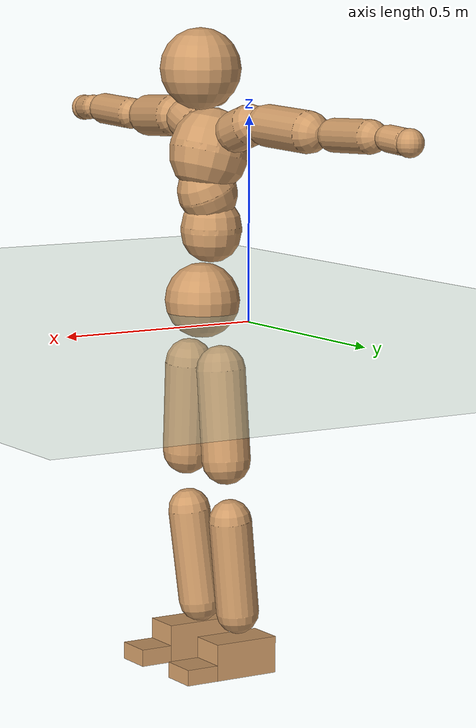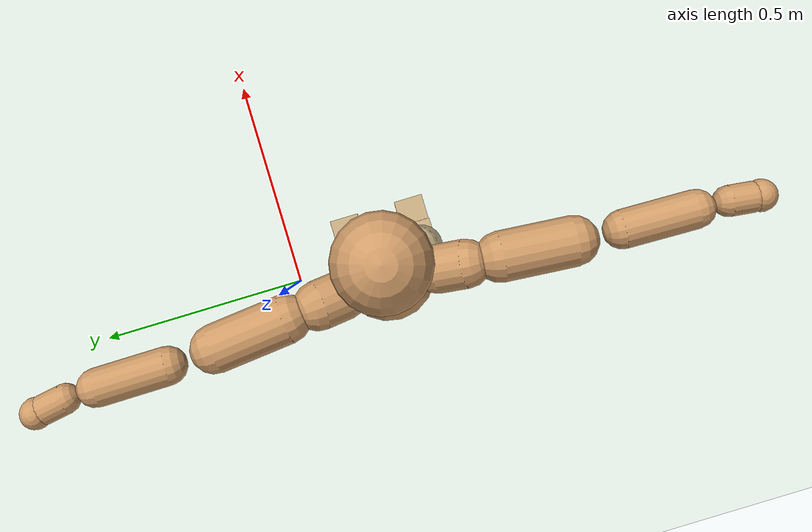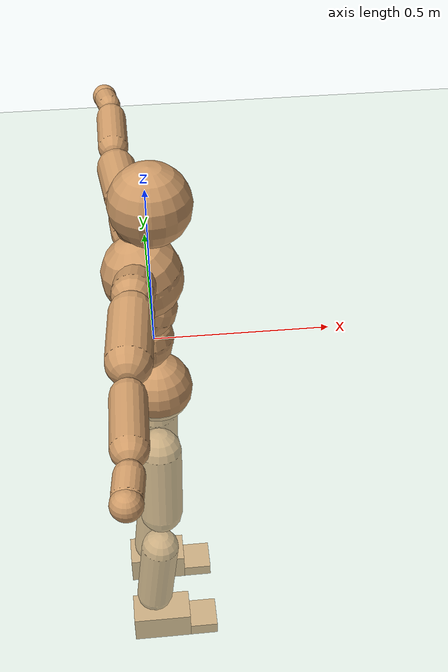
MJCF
<mujoco model="humanoid">
  <compiler coordinate="local"/>
  <default>
    <joint damping="0.0" armature="0.01" stiffness="0.0" limited="true"/>
    <geom conaffinity="1" condim="3" contype="7" margin="0.001" rgba="0.8 0.6 .4 1"/>
  </default>
  <asset>
    <texture type="skybox" builtin="gradient" rgb1=".4 .5 .6" rgb2="0 0 0" width="100" height="100"/>
    <texture builtin="flat" height="1278" mark="cross" markrgb="1 1 1" name="texgeom" random="0.01" rgb1="0.8 0.6 0.4" rgb2="0.8 0.6 0.4" type="cube" width="127"/>
    <texture builtin="checker" height="100" name="texplane" rgb1="0 0 0" rgb2="0.8 0.8 0.8" type="2d" width="100"/>
    <material name="MatPlane" reflectance="0.5" shininess="1" specular="1" texrepeat="60 60" texture="texplane"/>
    <material name="geom" texture="texgeom" texuniform="true"/>
  </asset>
  <worldbody>
    <light cutoff="100" diffuse="1 1 1" dir="-0 0 -1.3" directional="true" exponent="1" pos="0 0 1.3" specular=".1 .1 .1"/>
    <geom conaffinity="1" condim="3" name="floor" pos="0 0 0" rgba="0.8 0.9 0.8 1" size="100 100 .2" type="plane" material="MatPlane"/>
    <body name="Pelvis" pos="-0.0018 -0.2233 0.0282">
      <freejoint name="Pelvis"/>
      <geom type="sphere" contype="1" conaffinity="1" density="4629.6296296296305" size="0.0942" pos="0.0000 0.0000 0.0000" name="Pelvis"/>
      <body name="L_Hip" pos="-0.0068 0.0695 -0.0914">
        <joint name="L_Hip_x" type="hinge" pos="0 0 0" axis="1 0 0" user="250 2.5 1 500 10 2" armature="0.01" range="-90.0000 90.0000" damping="80" stiffness="800"/>
        <joint name="L_Hip_y" type="hinge" pos="0 0 0" axis="0 1 0" user="250 2.5 1 500 10 2" armature="0.01" range="-90.0000 90.0000" damping="80" stiffness="800"/>
        <joint name="L_Hip_z" type="hinge" pos="0 0 0" axis="0 0 1" user="250 2.5 1 500 10 2" armature="0.01" range="-90.0000 90.0000" damping="80" stiffness="800"/>
        <geom type="capsule" contype="1" conaffinity="1" density="2040.816327" fromto="-0.0009 0.0069 -0.0750 -0.0036 0.0274 -0.3002" size="0.0615" name="L_Hip"/>
        <body name="L_Knee" pos="-0.0045 0.0343 -0.3752">
          <joint name="L_Knee_x" type="hinge" pos="0 0 0" axis="1 0 0" user="250 2.5 1 500 10 2" armature="0.01" range="-5.6250 5.6250" damping="80" stiffness="800"/>
          <joint name="L_Knee_y" type="hinge" pos="0 0 0" axis="0 1 0" user="250 2.5 1 500 10 2" armature="0.01" range="0.0000 180.0000" damping="80" stiffness="800"/>
          <joint name="L_Knee_z" type="hinge" pos="0 0 0" axis="0 0 1" user="250 2.5 1 500 10 2" armature="0.01" range="-5.6250 5.6250" damping="80" stiffness="800"/>
          <geom type="capsule" contype="1" conaffinity="1" density="1234.567901" fromto="-0.0087 -0.0027 -0.0796 -0.0350 -0.0109 -0.3184" size="0.0541" name="L_Knee"/>
          <body name="L_Ankle" pos="-0.0437 -0.0136 -0.398">
            <joint name="L_Ankle_x" type="hinge" pos="0 0 0" axis="1 0 0" user="150 2.5 1 500 10 2" armature="0.01" range="-45.0000 45.0000" damping="80" stiffness="800"/>
            <joint name="L_Ankle_y" type="hinge" pos="0 0 0" axis="0 1 0" user="150 2.5 1 500 10 2" armature="0.01" range="-90.0000 90.0000" damping="80" stiffness="800"/>
            <joint name="L_Ankle_z" type="hinge" pos="0 0 0" axis="0 0 1" user="150 2.5 1 500 10 2" armature="0.01" range="-45.0000 45.0000" damping="80" stiffness="800"/>
            <geom type="box" pos="0.0242 0.0233 -0.0239" size="0.085 0.0483 0.0464" quat="1.0000 0.0000 0.0000 0.0000" name="L_Ankle" density="1000"/>
            <body name="L_Toe" pos="0.1193 0.0264 -0.0558">
              <joint name="L_Toe_x" type="hinge" pos="0 0 0" axis="1 0 0" user="150 1 1 500 1 1" armature="0.01" range="-180.0000 180.0000" damping="50" stiffness="500"/>
              <joint name="L_Toe_y" type="hinge" pos="0 0 0" axis="0 1 0" user="150 1 1 500 1 1" armature="0.01" range="-180.0000 180.0000" damping="50" stiffness="500"/>
              <joint name="L_Toe_z" type="hinge" pos="0 0 0" axis="0 0 1" user="150 1 1 500 1 1" armature="0.01" range="-180.0000 180.0000" damping="50" stiffness="500"/>
              <geom type="box" pos="0.0248 -0.0030 0.0055" size="0.0496 0.0478 0.02" quat="1.0000 0.0000 0.0000 0.0000" name="L_Toe" density="1000"/>
            </body>
          </body>
        </body>
      </body>
      <body name="R_Hip" pos="-0.0043 -0.0677 -0.0905">
        <joint name="R_Hip_x" type="hinge" pos="0 0 0" axis="1 0 0" user="250 2.5 1 500 10 2" armature="0.01" range="-90.0000 90.0000" damping="80" stiffness="800"/>
        <joint name="R_Hip_y" type="hinge" pos="0 0 0" axis="0 1 0" user="250 2.5 1 500 10 2" armature="0.01" range="-90.0000 90.0000" damping="80" stiffness="800"/>
        <joint name="R_Hip_z" type="hinge" pos="0 0 0" axis="0 0 1" user="250 2.5 1 500 10 2" armature="0.01" range="-90.0000 90.0000" damping="80" stiffness="800"/>
        <geom type="capsule" contype="1" conaffinity="1" density="2040.816327" fromto="-0.0018 -0.0077 -0.0765 -0.0071 -0.0306 -0.3061" size="0.0606" name="R_Hip"/>
        <body name="R_Knee" pos="-0.0089 -0.0383 -0.3826">
          <joint name="R_Knee_x" type="hinge" pos="0 0 0" axis="1 0 0" user="250 2.5 1 500 10 2" armature="0.01" range="-5.6250 5.6250" damping="80" stiffness="800"/>
          <joint name="R_Knee_y" type="hinge" pos="0 0 0" axis="0 1 0" user="250 2.5 1 500 10 2" armature="0.01" range="0.0000 180.0000" damping="80" stiffness="800"/>
          <joint name="R_Knee_z" type="hinge" pos="0 0 0" axis="0 0 1" user="250 2.5 1 500 10 2" armature="0.01" range="-5.6250 5.6250" damping="80" stiffness="800"/>
          <geom type="capsule" contype="1" conaffinity="1" density="1234.567901" fromto="-0.0085 0.0032 -0.0797 -0.0338 0.0126 -0.3187" size="0.0541" name="R_Knee"/>
          <body name="R_Ankle" pos="-0.0423 0.0158 -0.3984">
            <joint name="R_Ankle_x" type="hinge" pos="0 0 0" axis="1 0 0" user="150 1 1 500 10 2" armature="0.01" range="-45.0000 45.0000" damping="80" stiffness="800"/>
            <joint name="R_Ankle_y" type="hinge" pos="0 0 0" axis="0 1 0" user="150 1 1 500 10 2" armature="0.01" range="-90.0000 90.0000" damping="80" stiffness="800"/>
            <joint name="R_Ankle_z" type="hinge" pos="0 0 0" axis="0 0 1" user="150 1 1 500 10 2" armature="0.01" range="-45.0000 45.0000" damping="80" stiffness="800"/>
            <geom type="box" pos="0.0256 -0.0212 -0.0174" size="0.0865 0.0483 0.0478" quat="1.0000 0.0000 0.0000 0.0000" name="R_Ankle" density="1000"/>
            <body name="R_Toe" pos="0.1233 -0.0254 -0.0481">
              <joint name="R_Toe_x" type="hinge" pos="0 0 0" axis="1 0 0" user="150 1 1 500 1 1" armature="0.01" range="-180.0000 180.0000" damping="50" stiffness="500"/>
              <joint name="R_Toe_y" type="hinge" pos="0 0 0" axis="0 1 0" user="150 1 1 500 1 1" armature="0.01" range="-180.0000 180.0000" damping="50" stiffness="500"/>
              <joint name="R_Toe_z" type="hinge" pos="0 0 0" axis="0 0 1" user="150 1 1 500 1 1" armature="0.01" range="-180.0000 180.0000" damping="50" stiffness="500"/>
              <geom type="box" pos="0.0227 0.0042 0.0045" size="0.0493 0.0479 0.0216" quat="1.0000 0.0000 0.0000 0.0000" name="R_Toe" density="1000"/>
            </body>
          </body>
        </body>
      </body>
      <body name="Torso" pos="-0.0267 -0.0025 0.109">
        <joint name="Torso_x" type="hinge" pos="0 0 0" axis="1 0 0" user="500 5 1 500 10 2" armature="0.01" range="-60.0000 60.0000" damping="100" stiffness="1000"/>
        <joint name="Torso_y" type="hinge" pos="0 0 0" axis="0 1 0" user="500 5 1 500 10 2" armature="0.01" range="-60.0000 60.0000" damping="100" stiffness="1000"/>
        <joint name="Torso_z" type="hinge" pos="0 0 0" axis="0 0 1" user="500 5 1 500 10 2" armature="0.01" range="-60.0000 60.0000" damping="100" stiffness="1000"/>
        <geom type="capsule" contype="1" conaffinity="1" density="2040.816327" fromto="0.0005 0.0025 0.0608 0.0006 0.0030 0.0743" size="0.0769" name="Torso"/>
        <body name="Spine" pos="0.0011 0.0055 0.1352">
          <joint name="Spine_x" type="hinge" pos="0 0 0" axis="1 0 0" user="500 5 1 500 10 2" armature="0.01" range="-60.0000 60.0000" damping="100" stiffness="1000"/>
          <joint name="Spine_y" type="hinge" pos="0 0 0" axis="0 1 0" user="500 5 1 500 10 2" armature="0.01" range="-60.0000 60.0000" damping="100" stiffness="1000"/>
          <joint name="Spine_z" type="hinge" pos="0 0 0" axis="0 0 1" user="500 5 1 500 10 2" armature="0.01" range="-60.0000 60.0000" damping="100" stiffness="1000"/>
          <geom type="capsule" contype="1" conaffinity="1" density="2040.816327" fromto="0.0114 0.0007 0.0238 0.0140 0.0008 0.0291" size="0.0755" name="Spine"/>
          <body name="Chest" pos="0.0254 0.0015 0.0529">
            <joint name="Chest_x" type="hinge" pos="0 0 0" axis="1 0 0" user="500 5 1 500 10 2" armature="0.01" range="-60.0000 60.0000" damping="100" stiffness="1000"/>
            <joint name="Chest_y" type="hinge" pos="0 0 0" axis="0 1 0" user="500 5 1 500 10 2" armature="0.01" range="-60.0000 60.0000" damping="100" stiffness="1000"/>
            <joint name="Chest_z" type="hinge" pos="0 0 0" axis="0 0 1" user="500 5 1 500 10 2" armature="0.01" range="-60.0000 60.0000" damping="100" stiffness="1000"/>
            <geom type="capsule" contype="1" conaffinity="1" density="2040.816327" fromto="-0.0173 -0.0009 0.0682 -0.0212 -0.0010 0.0833" size="0.1002" name="Chest"/>
            <body name="Neck" pos="-0.0429 -0.0028 0.2139">
              <joint name="Neck_x" type="hinge" pos="0 0 0" axis="1 0 0" user="150 1 1 250 50 4" armature="0.01" range="-5.6250 5.6250" damping="50" stiffness="500"/>
              <joint name="Neck_y" type="hinge" pos="0 0 0" axis="0 1 0" user="150 1 1 250 50 4" armature="0.01" range="-90.0000 90.0000" damping="50" stiffness="500"/>
              <joint name="Neck_z" type="hinge" pos="0 0 0" axis="0 0 1" user="150 1 1 250 50 4" armature="0.01" range="-90.0000 90.0000" damping="50" stiffness="500"/>
              <geom type="capsule" contype="1" conaffinity="1" density="1000" fromto="0.0103 0.0010 0.0130 0.0411 0.0041 0.0520" size="0.0436" name="Neck"/>
              <body name="Head" pos="0.0513 0.0052 0.065">
                <joint name="Head_x" type="hinge" pos="0 0 0" axis="1 0 0" user="150 1 1 250 50 4" armature="0.01" range="-5.6250 5.6250" damping="50" stiffness="500"/>
                <joint name="Head_y" type="hinge" pos="0 0 0" axis="0 1 0" user="150 1 1 250 50 4" armature="0.01" range="-90.0000 90.0000" damping="50" stiffness="500"/>
                <joint name="Head_z" type="hinge" pos="0 0 0" axis="0 0 1" user="150 1 1 250 50 4" armature="0.01" range="-90.0000 90.0000" damping="50" stiffness="500"/>
                <geom type="sphere" contype="1" conaffinity="1" density="1000" size="0.1011" pos="0.0000 0.0000 0.0000" name="Head"/>
              </body>
            </body>
            <body name="L_Thorax" pos="-0.0341 0.0788 0.1217">
              <joint name="L_Thorax_x" type="hinge" pos="0 0 0" axis="1 0 0" user="200 2 1 500 50 4" armature="0.01" range="-5.6250 5.6250" damping="50" stiffness="500"/>
              <joint name="L_Thorax_y" type="hinge" pos="0 0 0" axis="0 1 0" user="200 2 1 500 50 4" armature="0.01" range="-5.6250 5.6250" damping="50" stiffness="500"/>
              <joint name="L_Thorax_z" type="hinge" pos="0 0 0" axis="0 0 1" user="200 2 1 500 50 4" armature="0.01" range="-5.6250 5.6250" damping="50" stiffness="500"/>
              <geom type="capsule" contype="1" conaffinity="1" density="1000" fromto="-0.0018 0.0182 0.0061 -0.0071 0.0728 0.0244" size="0.0521" name="L_Thorax"/>
              <body name="L_Shoulder" pos="-0.0089 0.091 0.0305">
                <joint name="L_Shoulder_x" type="hinge" pos="0 0 0" axis="1 0 0" user="200 2 1 500 50 4" armature="0.01" range="-720.0000 720.0000" damping="50" stiffness="500"/>
                <joint name="L_Shoulder_y" type="hinge" pos="0 0 0" axis="0 1 0" user="200 2 1 500 50 4" armature="0.01" range="-720.0000 720.0000" damping="50" stiffness="500"/>
                <joint name="L_Shoulder_z" type="hinge" pos="0 0 0" axis="0 0 1" user="200 2 1 500 50 4" armature="0.01" range="-720.0000 720.0000" damping="50" stiffness="500"/>
                <geom type="capsule" contype="1" conaffinity="1" density="1000" fromto="-0.0055 0.0519 -0.0026 -0.0220 0.2077 -0.0102" size="0.0517" name="L_Shoulder"/>
                <body name="L_Elbow" pos="-0.0275 0.2596 -0.0128">
                  <joint name="L_Elbow_x" type="hinge" pos="0 0 0" axis="1 0 0" user="150 1 1 150 10 2" armature="0.01" range="-5.6250 5.6250" damping="50" stiffness="500"/>
                  <joint name="L_Elbow_y" type="hinge" pos="0 0 0" axis="0 1 0" user="150 1 1 150 10 2" armature="0.01" range="-5.6250 5.6250" damping="50" stiffness="500"/>
                  <joint name="L_Elbow_z" type="hinge" pos="0 0 0" axis="0 0 1" user="150 1 1 150 10 2" armature="0.01" range="-180.0000 0.0000" damping="50" stiffness="500"/>
                  <geom type="capsule" contype="1" conaffinity="1" density="1000" fromto="-0.0002 0.0498 0.0018 -0.0009 0.1994 0.0072" size="0.0405" name="L_Elbow"/>
                  <body name="L_Wrist" pos="-0.0012 0.2492 0.009">
                    <joint name="L_Wrist_x" type="hinge" pos="0 0 0" axis="1 0 0" user="100 1 1 150 1 1" armature="0.01" range="-180.0000 180.0000" damping="30" stiffness="300"/>
                    <joint name="L_Wrist_y" type="hinge" pos="0 0 0" axis="0 1 0" user="100 1 1 150 1 1" armature="0.01" range="-180.0000 180.0000" damping="30" stiffness="300"/>
                    <joint name="L_Wrist_z" type="hinge" pos="0 0 0" axis="0 0 1" user="100 1 1 150 1 1" armature="0.01" range="-180.0000 180.0000" damping="30" stiffness="300"/>
                    <geom type="capsule" contype="1" conaffinity="1" density="1000" fromto="-0.0030 0.0168 -0.0016 -0.0120 0.0672 -0.0065" size="0.0318" name="L_Wrist"/>
                    <body name="L_Hand" pos="-0.0149 0.084 -0.0082">
                      <joint name="L_Hand_x" type="hinge" pos="0 0 0" axis="1 0 0" user="50 1 1 150 1 1" armature="0.01" range="-180.0000 180.0000" damping="30" stiffness="300"/>
                      <joint name="L_Hand_y" type="hinge" pos="0 0 0" axis="0 1 0" user="50 1 1 150 1 1" armature="0.01" range="-180.0000 180.0000" damping="30" stiffness="300"/>
                      <joint name="L_Hand_z" type="hinge" pos="0 0 0" axis="0 0 1" user="50 1 1 150 1 1" armature="0.01" range="-180.0000 180.0000" damping="30" stiffness="300"/>
                      <geom type="sphere" contype="1" conaffinity="1" density="1000" size="0.0337" pos="0.0000 0.0000 0.0000" name="L_Hand"/>
                    </body>
                  </body>
                </body>
              </body>
            </body>
            <body name="R_Thorax" pos="-0.0386 -0.0818 0.1188">
              <joint name="R_Thorax_x" type="hinge" pos="0 0 0" axis="1 0 0" user="200 2 1 150 10 2" armature="0.01" range="-5.6250 5.6250" damping="50" stiffness="500"/>
              <joint name="R_Thorax_y" type="hinge" pos="0 0 0" axis="0 1 0" user="200 2 1 150 10 2" armature="0.01" range="-5.6250 5.6250" damping="50" stiffness="500"/>
              <joint name="R_Thorax_z" type="hinge" pos="0 0 0" axis="0 0 1" user="200 2 1 150 10 2" armature="0.01" range="-5.6250 5.6250" damping="50" stiffness="500"/>
              <geom type="capsule" contype="1" conaffinity="1" density="1000" fromto="-0.0018 -0.0192 0.0065 -0.0073 -0.0768 0.0260" size="0.0511" name="R_Thorax"/>
              <body name="R_Shoulder" pos="-0.0091 -0.096 0.0326">
                <joint name="R_Shoulder_x" type="hinge" pos="0 0 0" axis="1 0 0" user="200 2 1 250 10 2" armature="0.01" range="-720.0000 720.0000" damping="50" stiffness="500"/>
                <joint name="R_Shoulder_y" type="hinge" pos="0 0 0" axis="0 1 0" user="200 2 1 250 10 2" armature="0.01" range="-720.0000 720.0000" damping="50" stiffness="500"/>
                <joint name="R_Shoulder_z" type="hinge" pos="0 0 0" axis="0 0 1" user="200 2 1 250 10 2" armature="0.01" range="-720.0000 720.0000" damping="50" stiffness="500"/>
                <geom type="capsule" contype="1" conaffinity="1" density="1000" fromto="-0.0043 -0.0507 -0.0027 -0.0171 -0.2030 -0.0107" size="0.0531" name="R_Shoulder"/>
                <body name="R_Elbow" pos="-0.0214 -0.2537 -0.0133">
                  <joint name="R_Elbow_x" type="hinge" pos="0 0 0" axis="1 0 0" user="150 1 1 150 10 2" armature="0.01" range="-5.6250 5.6250" damping="50" stiffness="500"/>
                  <joint name="R_Elbow_y" type="hinge" pos="0 0 0" axis="0 1 0" user="150 1 1 150 10 2" armature="0.01" range="-5.6250 5.6250" damping="50" stiffness="500"/>
                  <joint name="R_Elbow_z" type="hinge" pos="0 0 0" axis="0 0 1" user="150 1 1 150 10 2" armature="0.01" range="0.0000 180.0000" damping="50" stiffness="500"/>
                  <geom type="capsule" contype="1" conaffinity="1" density="1000" fromto="-0.0011 -0.0511 0.0016 -0.0044 -0.2042 0.0062" size="0.0408" name="R_Elbow"/>
                  <body name="R_Wrist" pos="-0.0056 -0.2553 0.0078">
                    <joint name="R_Wrist_x" type="hinge" pos="0 0 0" axis="1 0 0" user="100 1 1 150 1 1" armature="0.01" range="-180.0000 180.0000" damping="30" stiffness="300"/>
                    <joint name="R_Wrist_y" type="hinge" pos="0 0 0" axis="0 1 0" user="100 1 1 150 1 1" armature="0.01" range="-180.0000 180.0000" damping="30" stiffness="300"/>
                    <joint name="R_Wrist_z" type="hinge" pos="0 0 0" axis="0 0 1" user="100 1 1 150 1 1" armature="0.01" range="-180.0000 180.0000" damping="30" stiffness="300"/>
                    <geom type="capsule" contype="1" conaffinity="1" density="1000" fromto="-0.0021 -0.0169 -0.0012 -0.0083 -0.0677 -0.0049" size="0.0326" name="R_Wrist"/>
                    <body name="R_Hand" pos="-0.0103 -0.0846 -0.0061">
                      <joint name="R_Hand_x" type="hinge" pos="0 0 0" axis="1 0 0" user="50 1 1 150 1 1" armature="0.01" range="-180.0000 180.0000" damping="30" stiffness="300"/>
                      <joint name="R_Hand_y" type="hinge" pos="0 0 0" axis="0 1 0" user="50 1 1 150 1 1" armature="0.01" range="-180.0000 180.0000" damping="30" stiffness="300"/>
                      <joint name="R_Hand_z" type="hinge" pos="0 0 0" axis="0 0 1" user="50 1 1 150 1 1" armature="0.01" range="-180.0000 180.0000" damping="30" stiffness="300"/>
                      <geom type="sphere" contype="1" conaffinity="1" density="1000" size="0.0340" pos="0.0000 0.0000 0.0000" name="R_Hand"/>
                    </body>
                  </body>
                </body>
              </body>
            </body>
          </body>
        </body>
      </body>
    </body>
  </worldbody>
  <actuator>
    <motor name="L_Hip_x" joint="L_Hip_x" gear="1"/>
    <motor name="L_Hip_y" joint="L_Hip_y" gear="1"/>
    <motor name="L_Hip_z" joint="L_Hip_z" gear="1"/>
    <motor name="L_Knee_x" joint="L_Knee_x" gear="1"/>
    <motor name="L_Knee_y" joint="L_Knee_y" gear="1"/>
    <motor name="L_Knee_z" joint="L_Knee_z" gear="1"/>
    <motor name="L_Ankle_x" joint="L_Ankle_x" gear="1"/>
    <motor name="L_Ankle_y" joint="L_Ankle_y" gear="1"/>
    <motor name="L_Ankle_z" joint="L_Ankle_z" gear="1"/>
    <motor name="L_Toe_x" joint="L_Toe_x" gear="1"/>
    <motor name="L_Toe_y" joint="L_Toe_y" gear="1"/>
    <motor name="L_Toe_z" joint="L_Toe_z" gear="1"/>
    <motor name="R_Hip_x" joint="R_Hip_x" gear="1"/>
    <motor name="R_Hip_y" joint="R_Hip_y" gear="1"/>
    <motor name="R_Hip_z" joint="R_Hip_z" gear="1"/>
    <motor name="R_Knee_x" joint="R_Knee_x" gear="1"/>
    <motor name="R_Knee_y" joint="R_Knee_y" gear="1"/>
    <motor name="R_Knee_z" joint="R_Knee_z" gear="1"/>
    <motor name="R_Ankle_x" joint="R_Ankle_x" gear="1"/>
    <motor name="R_Ankle_y" joint="R_Ankle_y" gear="1"/>
    <motor name="R_Ankle_z" joint="R_Ankle_z" gear="1"/>
    <motor name="R_Toe_x" joint="R_Toe_x" gear="1"/>
    <motor name="R_Toe_y" joint="R_Toe_y" gear="1"/>
    <motor name="R_Toe_z" joint="R_Toe_z" gear="1"/>
    <motor name="Torso_x" joint="Torso_x" gear="1"/>
    <motor name="Torso_y" joint="Torso_y" gear="1"/>
    <motor name="Torso_z" joint="Torso_z" gear="1"/>
    <motor name="Spine_x" joint="Spine_x" gear="1"/>
    <motor name="Spine_y" joint="Spine_y" gear="1"/>
    <motor name="Spine_z" joint="Spine_z" gear="1"/>
    <motor name="Chest_x" joint="Chest_x" gear="1"/>
    <motor name="Chest_y" joint="Chest_y" gear="1"/>
    <motor name="Chest_z" joint="Chest_z" gear="1"/>
    <motor name="Neck_x" joint="Neck_x" gear="1"/>
    <motor name="Neck_y" joint="Neck_y" gear="1"/>
    <motor name="Neck_z" joint="Neck_z" gear="1"/>
    <motor name="Head_x" joint="Head_x" gear="1"/>
    <motor name="Head_y" joint="Head_y" gear="1"/>
    <motor name="Head_z" joint="Head_z" gear="1"/>
    <motor name="L_Thorax_x" joint="L_Thorax_x" gear="1"/>
    <motor name="L_Thorax_y" joint="L_Thorax_y" gear="1"/>
    <motor name="L_Thorax_z" joint="L_Thorax_z" gear="1"/>
    <motor name="L_Shoulder_x" joint="L_Shoulder_x" gear="1"/>
    <motor name="L_Shoulder_y" joint="L_Shoulder_y" gear="1"/>
    <motor name="L_Shoulder_z" joint="L_Shoulder_z" gear="1"/>
    <motor name="L_Elbow_x" joint="L_Elbow_x" gear="1"/>
    <motor name="L_Elbow_y" joint="L_Elbow_y" gear="1"/>
    <motor name="L_Elbow_z" joint="L_Elbow_z" gear="1"/>
    <motor name="L_Wrist_x" joint="L_Wrist_x" gear="1"/>
    <motor name="L_Wrist_y" joint="L_Wrist_y" gear="1"/>
    <motor name="L_Wrist_z" joint="L_Wrist_z" gear="1"/>
    <motor name="L_Hand_x" joint="L_Hand_x" gear="1"/>
    <motor name="L_Hand_y" joint="L_Hand_y" gear="1"/>
    <motor name="L_Hand_z" joint="L_Hand_z" gear="1"/>
    <motor name="R_Thorax_x" joint="R_Thorax_x" gear="1"/>
    <motor name="R_Thorax_y" joint="R_Thorax_y" gear="1"/>
    <motor name="R_Thorax_z" joint="R_Thorax_z" gear="1"/>
    <motor name="R_Shoulder_x" joint="R_Shoulder_x" gear="1"/>
    <motor name="R_Shoulder_y" joint="R_Shoulder_y" gear="1"/>
    <motor name="R_Shoulder_z" joint="R_Shoulder_z" gear="1"/>
    <motor name="R_Elbow_x" joint="R_Elbow_x" gear="1"/>
    <motor name="R_Elbow_y" joint="R_Elbow_y" gear="1"/>
    <motor name="R_Elbow_z" joint="R_Elbow_z" gear="1"/>
    <motor name="R_Wrist_x" joint="R_Wrist_x" gear="1"/>
    <motor name="R_Wrist_y" joint="R_Wrist_y" gear="1"/>
    <motor name="R_Wrist_z" joint="R_Wrist_z" gear="1"/>
    <motor name="R_Hand_x" joint="R_Hand_x" gear="1"/>
    <motor name="R_Hand_y" joint="R_Hand_y" gear="1"/>
    <motor name="R_Hand_z" joint="R_Hand_z" gear="1"/>
  </actuator>
  <contact>
    <exclude body1="Torso" body2="Chest"/>
    <exclude body1="Head" body2="Chest"/>
    <exclude body1="R_Knee" body2="R_Toe"/>
    <exclude body1="R_Knee" body2="L_Ankle"/>
    <exclude body1="R_Knee" body2="L_Toe"/>
    <exclude body1="L_Knee" body2="L_Toe"/>
    <exclude body1="L_Knee" body2="R_Ankle"/>
    <exclude body1="L_Knee" body2="R_Toe"/>
    <exclude body1="L_Shoulder" body2="Chest"/>
    <exclude body1="R_Shoulder" body2="Chest"/>
  </contact>
  <sensor/>
  <size njmax="700" nconmax="700"/>
</mujoco>
